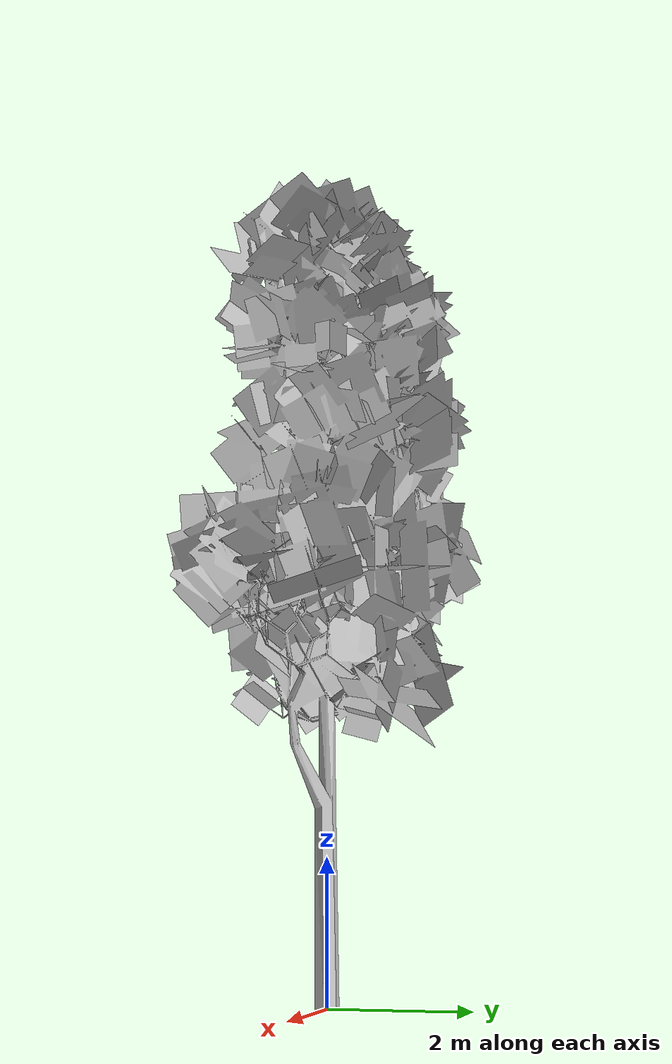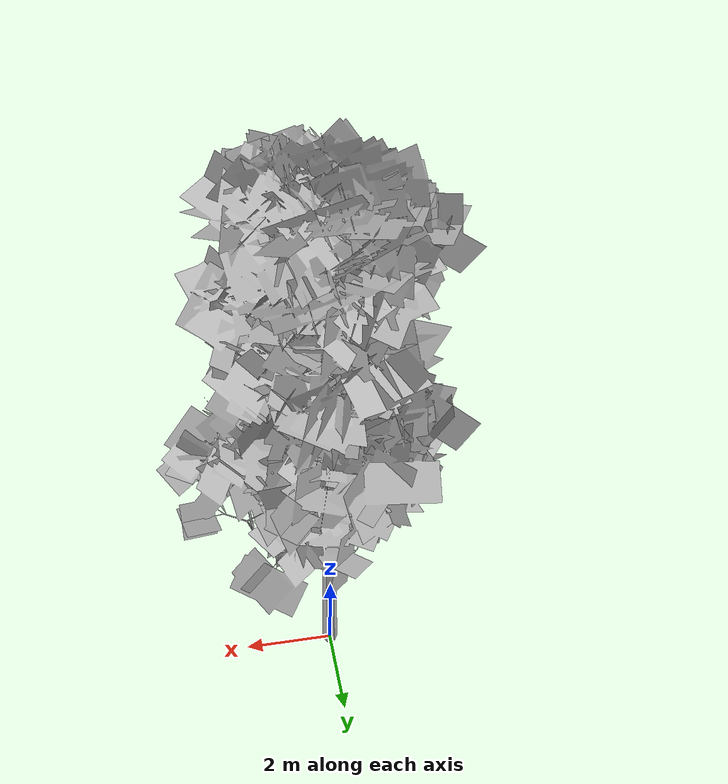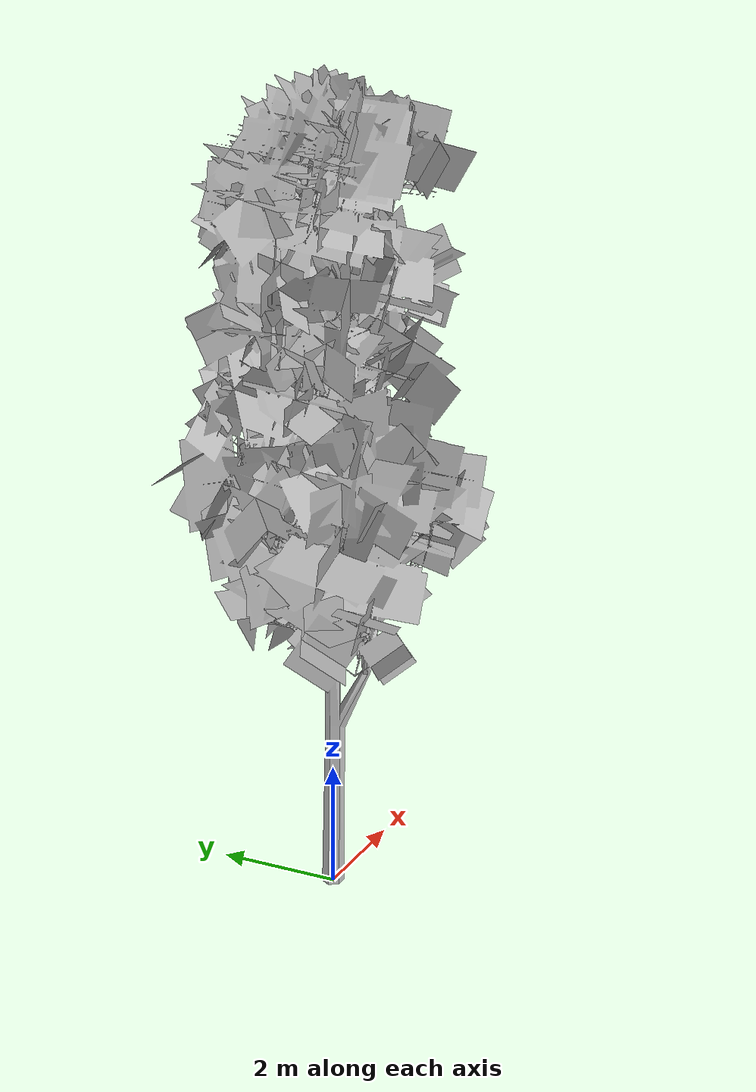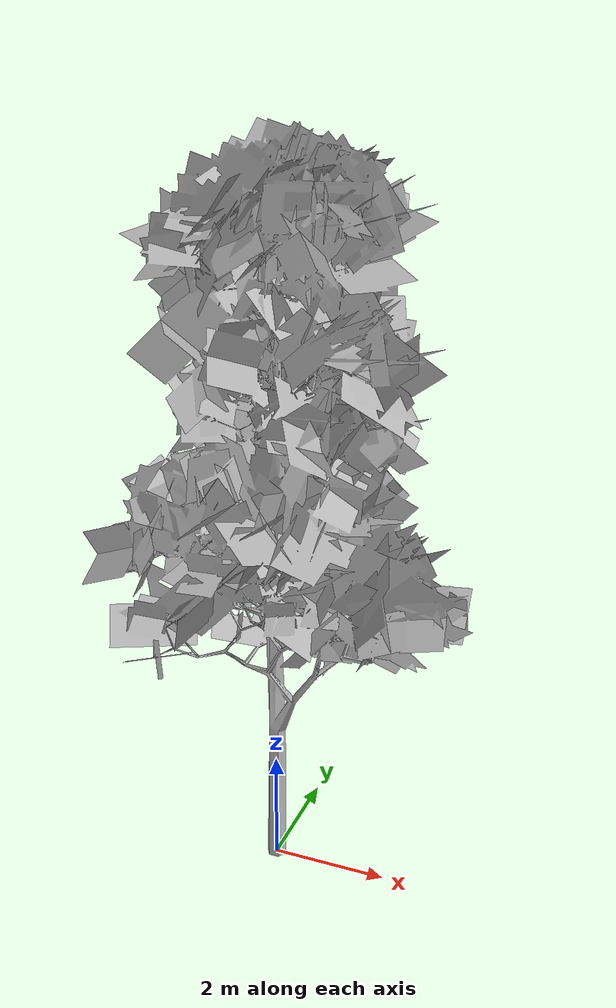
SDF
<sdf version='1.9'>
  <model name='tree_0'>
    <static>true</static>
    <frame name="tree_o" attached_to='branch_0'>
      <pose>0 0 0 0 0 0</pose>
    </frame>
    <link name='branch_0'>
      <inertial>
        <pose>-0.06241931606327641 1.350626340778748 1.923779702340026 0 0 0</pose>
        <mass>7</mass>
        <inertia>
          <ixx>18.455449295423151</ixx>
          <ixy>-0.5384581904470277</ixy>
          <ixz>0.044425222677061497</ixz>
          <iyy>14.900766032310321</iyy>
          <iyz>-4.2777394629844459</iyz>
          <izz>12.389009119758169</izz>
        </inertia>
      </inertial>
      <collision name='branch_0_collision_collision'>
        <pose>0 0 0.0 1.57 0 0</pose>
        <geometry>
          <mesh>
            <scale>0.001 0.001 0.001</scale>
            <uri>model://tree_0/meshes/tree_0.dae</uri>
          </mesh>
        </geometry>
      </collision>
      <visual name='branch_0_visual_visual'>
        <pose>0 0 0.0 1.57 0 0</pose>
        <geometry>
          <mesh>
            <scale>0.001 0.001 0.001</scale>
            <uri>model://tree_0/meshes/tree_0.dae</uri>
          </mesh>
        </geometry>
      </visual>
    </link>
  </model>
</sdf>
